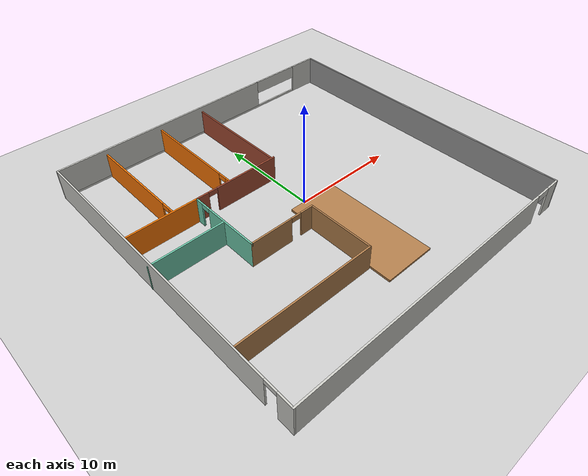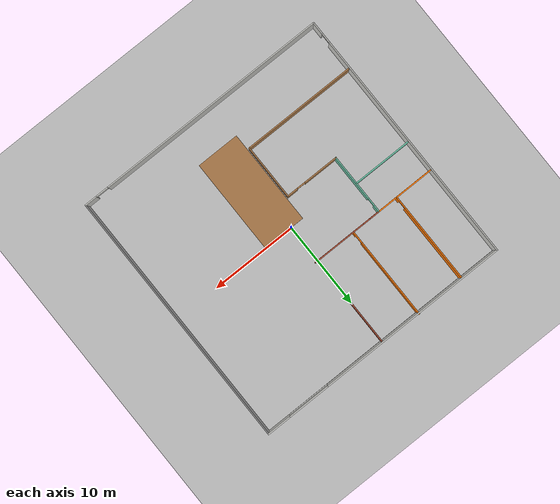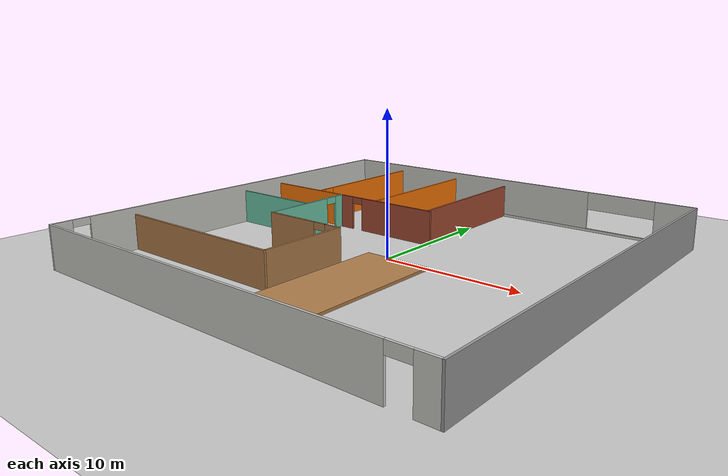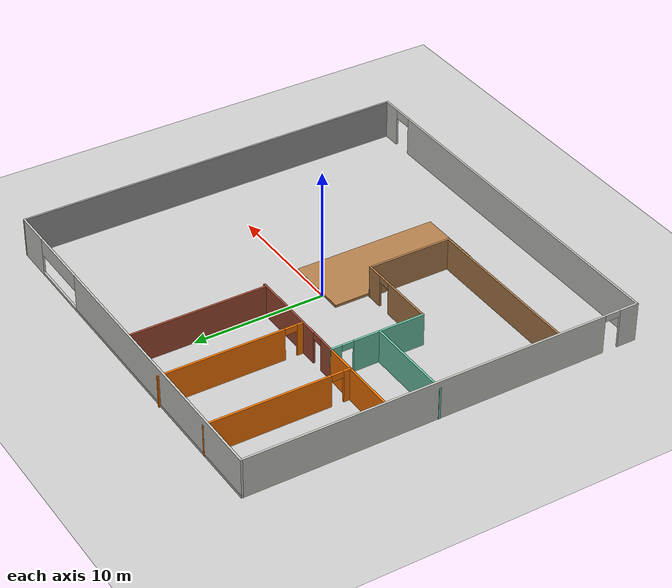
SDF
<sdf version="1.7">
 <world name="default">
  <model name="ground_plane">
   <static>1</static>
   <link name="link">
    <collision name="collision">
     <geometry><plane><normal>0 0 1</normal><size>100 100</size></plane></geometry>
     <surface>
      <contact><collide_bitmask>65535</collide_bitmask></contact>
      <friction><ode><mu>100</mu><mu2>50</mu2></ode></friction>
     </surface>
    </collision>
    <visual name="visual">
     <cast_shadows>0</cast_shadows>
     <geometry><plane><normal>0 0 1</normal><size>100 100</size></plane></geometry>
     <material>
      <script><uri>file://media/materials/scripts/gazebo.material</uri><name>Gazebo/Grey</name></script>
     </material>
    </visual>
   </link>
  </model>
  <model name="7F-2">
   <pose>-0.013384 0.0558 0 0 -0 0</pose>
   <link name="Wall_0">
    <pose>0.013384 -15.0558 0 0 -0 0</pose>
    <visual name="Wall_0_Visual_0">
     <pose>-1.49327 0 1.5 0 -0 0</pose>
     <geometry><box><size>27.1635 0.15 3</size></box></geometry>
     <material>
      <script><uri>file://media/materials/scripts/gazebo.material</uri><name>Gazebo/CeilingTiled</name></script>
      <ambient>1 1 1 1</ambient>
     </material>
     <meta><layer>0</layer></meta>
    </visual>
    <collision name="Wall_0_Collision_0">
     <geometry><box><size>27.1635 0.15 3</size></box></geometry>
     <pose>-1.49327 0 1.5 0 -0 0</pose>
    </collision>
    <visual name="Wall_0_Visual_1">
     <pose>14.3317 0 1.5 0 -0 0</pose>
     <geometry><box><size>1.48654 0.15 3</size></box></geometry>
     <material>
      <script><uri>file://media/materials/scripts/gazebo.material</uri><name>Gazebo/CeilingTiled</name></script>
      <ambient>1 1 1 1</ambient>
     </material>
     <meta><layer>0</layer></meta>
    </visual>
    <collision name="Wall_0_Collision_1">
     <geometry><box><size>1.48654 0.15 3</size></box></geometry>
     <pose>14.3317 0 1.5 0 -0 0</pose>
    </collision>
    <visual name="Wall_0_Visual_2">
     <pose>12.8385 0 2.65 0 -0 0</pose>
     <geometry><box><size>1.5 0.15 0.7</size></box></geometry>
     <material>
      <script><uri>file://media/materials/scripts/gazebo.material</uri><name>Gazebo/CeilingTiled</name></script>
      <ambient>1 1 1 1</ambient>
     </material>
     <meta><layer>0</layer></meta>
    </visual>
    <collision name="Wall_0_Collision_2">
     <geometry><box><size>1.5 0.15 0.7</size></box></geometry>
     <pose>12.8385 0 2.65 0 -0 0</pose>
    </collision>
   </link>
   <link name="Wall_11">
    <pose>-4.68425 9.7558 0 0 -0 -1.5708</pose>
    <visual name="Wall_11_Visual_0">
     <pose>-0.674266 0 1.25 0 -0 0</pose>
     <geometry><box><size>9.40147 0.15 2.5</size></box></geometry>
     <material>
      <script><uri>file://media/materials/scripts/gazebo.material</uri><name>Gazebo/Grey</name></script>
      <ambient>0.996078 0.47451 0.0196078 1</ambient>
     </material>
     <meta><layer>0</layer></meta>
    </visual>
    <collision name="Wall_11_Collision_0">
     <geometry><box><size>9.40147 0.15 2.5</size></box></geometry>
     <pose>-0.674266 0 1.25 0 -0 0</pose>
    </collision>
    <visual name="Wall_11_Visual_1">
     <pose>5.15073 0 1.25 0 -0 0</pose>
     <geometry><box><size>0.448532 0.15 2.5</size></box></geometry>
     <material>
      <script><uri>file://media/materials/scripts/gazebo.material</uri><name>Gazebo/Grey</name></script>
      <ambient>0.996078 0.47451 0.0196078 1</ambient>
     </material>
     <meta><layer>0</layer></meta>
    </visual>
    <collision name="Wall_11_Collision_1">
     <geometry><box><size>0.448532 0.15 2.5</size></box></geometry>
     <pose>5.15073 0 1.25 0 -0 0</pose>
    </collision>
    <visual name="Wall_11_Visual_2">
     <pose>4.47647 0 2.25 0 -0 0</pose>
     <geometry><box><size>0.9 0.15 0.5</size></box></geometry>
     <material>
      <script><uri>file://media/materials/scripts/gazebo.material</uri><name>Gazebo/Grey</name></script>
      <ambient>0.996078 0.47451 0.0196078 1</ambient>
     </material>
     <meta><layer>0</layer></meta>
    </visual>
    <collision name="Wall_11_Collision_2">
     <geometry><box><size>0.9 0.15 0.5</size></box></geometry>
     <pose>4.47647 0 2.25 0 -0 0</pose>
    </collision>
   </link>
   <link name="Wall_13">
    <pose>-10.409 9.6488 0 0 -0 -1.5708</pose>
    <visual name="Wall_13_Visual_0">
     <pose>-0.727769 0 1.25 0 -0 0</pose>
     <geometry><box><size>9.29446 0.15 2.5</size></box></geometry>
     <material>
      <script><uri>file://media/materials/scripts/gazebo.material</uri><name>Gazebo/Grey</name></script>
      <ambient>0.996078 0.47451 0.0196078 1</ambient>
     </material>
     <meta><layer>0</layer></meta>
    </visual>
    <collision name="Wall_13_Collision_0">
     <geometry><box><size>9.29446 0.15 2.5</size></box></geometry>
     <pose>-0.727769 0 1.25 0 -0 0</pose>
    </collision>
    <visual name="Wall_13_Visual_1">
     <pose>5.09723 0 1.25 0 -0 0</pose>
     <geometry><box><size>0.555538 0.15 2.5</size></box></geometry>
     <material>
      <script><uri>file://media/materials/scripts/gazebo.material</uri><name>Gazebo/Grey</name></script>
      <ambient>0.996078 0.47451 0.0196078 1</ambient>
     </material>
     <meta><layer>0</layer></meta>
    </visual>
    <collision name="Wall_13_Collision_1">
     <geometry><box><size>0.555538 0.15 2.5</size></box></geometry>
     <pose>5.09723 0 1.25 0 -0 0</pose>
    </collision>
    <visual name="Wall_13_Visual_2">
     <pose>4.36946 0 2.25 0 -0 0</pose>
     <geometry><box><size>0.9 0.15 0.5</size></box></geometry>
     <material>
      <script><uri>file://media/materials/scripts/gazebo.material</uri><name>Gazebo/Grey</name></script>
      <ambient>0.996078 0.47451 0.0196078 1</ambient>
     </material>
     <meta><layer>0</layer></meta>
    </visual>
    <collision name="Wall_13_Collision_2">
     <geometry><box><size>0.9 0.15 0.5</size></box></geometry>
     <pose>4.36946 0 2.25 0 -0 0</pose>
    </collision>
   </link>
   <link name="Wall_15">
    <pose>-8.07841 0.751801 0 0 -0 -1.5708</pose>
    <visual name="Wall_15_Visual_0">
     <pose>-3.18481 0 1.25 0 -0 0</pose>
     <geometry><box><size>0.880378 0.15 2.5</size></box></geometry>
     <material>
      <script><uri>file://media/materials/scripts/gazebo.material</uri><name>Gazebo/Grey</name></script>
      <ambient>0.435294 0.796078 0.67451 1</ambient>
     </material>
     <meta><layer>0</layer></meta>
    </visual>
    <collision name="Wall_15_Collision_0">
     <geometry><box><size>0.880378 0.15 2.5</size></box></geometry>
     <pose>-3.18481 0 1.25 0 -0 0</pose>
    </collision>
    <visual name="Wall_15_Visual_1">
     <pose>0.890189 0 1.25 0 -0 0</pose>
     <geometry><box><size>5.46962 0.15 2.5</size></box></geometry>
     <material>
      <script><uri>file://media/materials/scripts/gazebo.material</uri><name>Gazebo/Grey</name></script>
      <ambient>0.435294 0.796078 0.67451 1</ambient>
     </material>
     <meta><layer>0</layer></meta>
    </visual>
    <collision name="Wall_15_Collision_1">
     <geometry><box><size>5.46962 0.15 2.5</size></box></geometry>
     <pose>0.890189 0 1.25 0 -0 0</pose>
    </collision>
    <visual name="Wall_15_Visual_2">
     <pose>-2.29462 0 2.25 0 -0 0</pose>
     <geometry><box><size>0.9 0.15 0.5</size></box></geometry>
     <material>
      <script><uri>file://media/materials/scripts/gazebo.material</uri><name>Gazebo/Grey</name></script>
      <ambient>0.435294 0.796078 0.67451 1</ambient>
     </material>
     <meta><layer>0</layer></meta>
    </visual>
    <collision name="Wall_15_Collision_2">
     <geometry><box><size>0.9 0.15 0.5</size></box></geometry>
     <pose>-2.29462 0 2.25 0 -0 0</pose>
    </collision>
   </link>
   <link name="Wall_18">
    <pose>-4.91841 -2.7982 0 0 -0 0</pose>
    <visual name="Wall_18_Visual_0">
     <pose>-1.15754 0 1.25 0 -0 0</pose>
     <geometry><box><size>4.15493 0.15 2.5</size></box></geometry>
     <material>
      <script><uri>file://media/materials/scripts/gazebo.material</uri><name>Gazebo/Wood</name></script>
      <ambient>0.435294 0.796078 0.67451 1</ambient>
     </material>
     <meta><layer>0</layer></meta>
    </visual>
    <collision name="Wall_18_Collision_0">
     <geometry><box><size>4.15493 0.15 2.5</size></box></geometry>
     <pose>-1.15754 0 1.25 0 -0 0</pose>
    </collision>
    <visual name="Wall_18_Visual_1">
     <pose>2.57746 0 1.25 0 -0 0</pose>
     <geometry><box><size>1.31507 0.15 2.5</size></box></geometry>
     <material>
      <script><uri>file://media/materials/scripts/gazebo.material</uri><name>Gazebo/Wood</name></script>
      <ambient>0.435294 0.796078 0.67451 1</ambient>
     </material>
     <meta><layer>0</layer></meta>
    </visual>
    <collision name="Wall_18_Collision_1">
     <geometry><box><size>1.31507 0.15 2.5</size></box></geometry>
     <pose>2.57746 0 1.25 0 -0 0</pose>
    </collision>
    <visual name="Wall_18_Visual_2">
     <pose>1.41993 0 2.25 0 -0 0</pose>
     <geometry><box><size>1 0.15 0.5</size></box></geometry>
     <material>
      <script><uri>file://media/materials/scripts/gazebo.material</uri><name>Gazebo/Wood</name></script>
      <ambient>0.435294 0.796078 0.67451 1</ambient>
     </material>
     <meta><layer>0</layer></meta>
    </visual>
    <collision name="Wall_18_Collision_2">
     <geometry><box><size>1 0.15 0.5</size></box></geometry>
     <pose>1.41993 0 2.25 0 -0 0</pose>
    </collision>
   </link>
   <link name="Wall_19">
    <collision name="Wall_19_Collision">
     <geometry><box><size>6.5 0.15 2.5</size></box></geometry>
     <pose>0 0 1.25 0 -0 0</pose>
    </collision>
    <visual name="Wall_19_Visual">
     <pose>0 0 1.25 0 -0 0</pose>
     <geometry><box><size>6.5 0.15 2.5</size></box></geometry>
     <material>
      <script><uri>file://media/materials/scripts/gazebo.material</uri><name>Gazebo/Wood</name></script>
      <ambient>0.203922 0.396078 0.643137 1</ambient>
     </material>
     <meta><layer>0</layer></meta>
    </visual>
    <pose>-1.75841 -5.9732 0 0 -0 -1.5708</pose>
   </link>
   <link name="Wall_2">
    <collision name="Wall_2_Collision">
     <geometry><box><size>30.15 0.15 3</size></box></geometry>
     <pose>0 0 1.5 0 -0 0</pose>
    </collision>
    <visual name="Wall_2_Visual">
     <pose>0 0 1.5 0 -0 0</pose>
     <geometry><box><size>30.15 0.15 3</size></box></geometry>
     <material>
      <script><uri>file://media/materials/scripts/gazebo.material</uri><name>Gazebo/Grey</name></script>
      <ambient>1 1 1 1</ambient>
     </material>
     <meta><layer>0</layer></meta>
    </visual>
    <pose>15.0134 -0.055802 0 0 -0 1.5708</pose>
   </link>
   <link name="Wall_20">
    <collision name="Wall_20_Collision">
     <geometry><box><size>13.25 0.15 2.5</size></box></geometry>
     <pose>0 0 1.25 0 -0 0</pose>
    </collision>
    <visual name="Wall_20_Visual">
     <pose>0 0 1.25 0 -0 0</pose>
     <geometry><box><size>13.25 0.15 2.5</size></box></geometry>
     <material>
      <script><uri>file://media/materials/scripts/gazebo.material</uri><name>Gazebo/Wood</name></script>
      <ambient>0.203922 0.396078 0.643137 1</ambient>
     </material>
     <meta><layer>0</layer></meta>
    </visual>
    <pose>-8.30841 -9.1482 0 0 -0 3.14159</pose>
   </link>
   <link name="Wall_24">
    <collision name="Wall_24_Collision">
     <geometry><box><size>7.03 0.15 2.5</size></box></geometry>
     <pose>0 0 1.25 0 -0 0</pose>
    </collision>
    <visual name="Wall_24_Visual">
     <pose>0 0 1.25 0 -0 0</pose>
     <geometry><box><size>7.03 0.15 2.5</size></box></geometry>
     <material>
      <script><uri>file://media/materials/scripts/gazebo.material</uri><name>Gazebo/Grey</name></script>
      <ambient>0.996078 0.47451 0.0196078 1</ambient>
     </material>
     <meta><layer>0</layer></meta>
    </visual>
    <pose>-11.5184 4.3018 0 0 -0 3.14159</pose>
   </link>
   <link name="Wall_26">
    <pose>-3.91341 4.3018 0 0 -0 0</pose>
    <visual name="Wall_26_Visual_0">
     <pose>-3.62084 0 1.25 0 -0 0</pose>
     <geometry><box><size>1.25833 0.15 2.5</size></box></geometry>
     <material>
      <script><uri>file://media/materials/scripts/gazebo.material</uri><name>Gazebo/Bricks</name></script>
      <ambient>1 1 1 1</ambient>
     </material>
     <meta><layer>0</layer></meta>
    </visual>
    <collision name="Wall_26_Collision_0">
     <geometry><box><size>1.25833 0.15 2.5</size></box></geometry>
     <pose>-3.62084 0 1.25 0 -0 0</pose>
    </collision>
    <visual name="Wall_26_Visual_1">
     <pose>1.07916 0 1.25 0 -0 0</pose>
     <geometry><box><size>6.34167 0.15 2.5</size></box></geometry>
     <material>
      <script><uri>file://media/materials/scripts/gazebo.material</uri><name>Gazebo/Bricks</name></script>
      <ambient>1 1 1 1</ambient>
     </material>
     <meta><layer>0</layer></meta>
    </visual>
    <collision name="Wall_26_Collision_1">
     <geometry><box><size>6.34167 0.15 2.5</size></box></geometry>
     <pose>1.07916 0 1.25 0 -0 0</pose>
    </collision>
    <visual name="Wall_26_Visual_2">
     <pose>-2.54167 0 2.25 0 -0 0</pose>
     <geometry><box><size>0.9 0.15 0.5</size></box></geometry>
     <material>
      <script><uri>file://media/materials/scripts/gazebo.material</uri><name>Gazebo/Bricks</name></script>
      <ambient>1 1 1 1</ambient>
     </material>
     <meta><layer>0</layer></meta>
    </visual>
    <collision name="Wall_26_Collision_2">
     <geometry><box><size>0.9 0.15 0.5</size></box></geometry>
     <pose>-2.54167 0 2.25 0 -0 0</pose>
    </collision>
   </link>
   <link name="Wall_30">
    <collision name="Wall_30_Collision">
     <geometry><box><size>7 0.15 2.5</size></box></geometry>
     <pose>0 0 1.25 0 -0 0</pose>
    </collision>
    <visual name="Wall_30_Visual">
     <pose>0 0 1.25 0 -0 0</pose>
     <geometry><box><size>7 0.15 2.5</size></box></geometry>
     <material>
      <script><uri>file://media/materials/scripts/gazebo.material</uri><name>Gazebo/Grey</name></script>
      <ambient>0.435294 0.796078 0.67451 1</ambient>
     </material>
     <meta><layer>0</layer></meta>
    </visual>
    <pose>-11.5884 0.576344 0 0 -0 0</pose>
   </link>
   <link name="Wall_35">
    <collision name="Wall_35_Collision">
     <geometry><box><size>11.1 5 0.2</size></box></geometry>
     <pose>0 0 0.1 0 -0 0</pose>
    </collision>
    <visual name="Wall_35_Visual">
     <pose>0 0 0.1 0 -0 0</pose>
     <geometry><box><size>11.1 5 0.2</size></box></geometry>
     <material>
      <script><uri>file://media/materials/scripts/gazebo.material</uri><name>Gazebo/Wood</name></script>
      <ambient>1 1 1 1</ambient>
     </material>
     <meta><layer>0</layer></meta>
    </visual>
    <pose>0.909882 -5.6625 0 0 -0 -1.5708</pose>
   </link>
   <link name="Wall_4">
    <pose>0.013384 14.9442 0 0 -0 3.14159</pose>
    <visual name="Wall_4_Visual_0">
     <pose>-13.6482 0 1.5 0 -0 0</pose>
     <geometry><box><size>2.85357 0.15 3</size></box></geometry>
     <material>
      <script><uri>file://media/materials/scripts/gazebo.material</uri><name>Gazebo/CeilingTiled</name></script>
      <ambient>1 1 1 1</ambient>
     </material>
     <meta><layer>0</layer></meta>
    </visual>
    <collision name="Wall_4_Collision_0">
     <geometry><box><size>2.85357 0.15 3</size></box></geometry>
     <pose>-13.6482 0 1.5 0 -0 0</pose>
    </collision>
    <visual name="Wall_4_Visual_1">
     <pose>1.42679 0 0.1 0 -0 0</pose>
     <geometry><box><size>27.2964 0.15 0.2</size></box></geometry>
     <material>
      <script><uri>file://media/materials/scripts/gazebo.material</uri><name>Gazebo/CeilingTiled</name></script>
      <ambient>1 1 1 1</ambient>
     </material>
     <meta><layer>0</layer></meta>
    </visual>
    <collision name="Wall_4_Collision_1">
     <geometry><box><size>27.2964 0.15 0.2</size></box></geometry>
     <pose>1.42679 0 0.1 0 -0 0</pose>
    </collision>
    <visual name="Wall_4_Visual_2">
     <pose>3.92679 0 1.6 0 -0 0</pose>
     <geometry><box><size>22.2964 0.15 2.8</size></box></geometry>
     <material>
      <script><uri>file://media/materials/scripts/gazebo.material</uri><name>Gazebo/CeilingTiled</name></script>
      <ambient>1 1 1 1</ambient>
     </material>
     <meta><layer>0</layer></meta>
    </visual>
    <collision name="Wall_4_Collision_2">
     <geometry><box><size>22.2964 0.15 2.8</size></box></geometry>
     <pose>3.92679 0 1.6 0 -0 0</pose>
    </collision>
    <visual name="Wall_4_Visual_3">
     <pose>-9.72143 0 2.35 0 -0 0</pose>
     <geometry><box><size>5 0.15 1.3</size></box></geometry>
     <material>
      <script><uri>file://media/materials/scripts/gazebo.material</uri><name>Gazebo/CeilingTiled</name></script>
      <ambient>1 1 1 1</ambient>
     </material>
     <meta><layer>0</layer></meta>
    </visual>
    <collision name="Wall_4_Collision_3">
     <geometry><box><size>5 0.15 1.3</size></box></geometry>
     <pose>-9.72143 0 2.35 0 -0 0</pose>
    </collision>
   </link>
   <link name="Wall_6">
    <pose>-14.9866 -0.055802 0 0 -0 -1.5708</pose>
    <visual name="Wall_6_Visual_0">
     <pose>-1.34384 0 1.5 0 -0 0</pose>
     <geometry><box><size>27.4623 0.15 3</size></box></geometry>
     <material>
      <script><uri>file://media/materials/scripts/gazebo.material</uri><name>Gazebo/CeilingTiled</name></script>
      <ambient>1 1 1 1</ambient>
     </material>
     <meta><layer>0</layer></meta>
    </visual>
    <collision name="Wall_6_Collision_0">
     <geometry><box><size>27.4623 0.15 3</size></box></geometry>
     <pose>-1.34384 0 1.5 0 -0 0</pose>
    </collision>
    <visual name="Wall_6_Visual_1">
     <pose>14.3312 0 1.5 0 -0 0</pose>
     <geometry><box><size>1.48768 0.15 3</size></box></geometry>
     <material>
      <script><uri>file://media/materials/scripts/gazebo.material</uri><name>Gazebo/CeilingTiled</name></script>
      <ambient>1 1 1 1</ambient>
     </material>
     <meta><layer>0</layer></meta>
    </visual>
    <collision name="Wall_6_Collision_1">
     <geometry><box><size>1.48768 0.15 3</size></box></geometry>
     <pose>14.3312 0 1.5 0 -0 0</pose>
    </collision>
    <visual name="Wall_6_Visual_2">
     <pose>12.9873 0 2.75 0 -0 0</pose>
     <geometry><box><size>1.2 0.15 0.5</size></box></geometry>
     <material>
      <script><uri>file://media/materials/scripts/gazebo.material</uri><name>Gazebo/CeilingTiled</name></script>
      <ambient>1 1 1 1</ambient>
     </material>
     <meta><layer>0</layer></meta>
    </visual>
    <collision name="Wall_6_Collision_2">
     <geometry><box><size>1.2 0.15 0.5</size></box></geometry>
     <pose>12.9873 0 2.75 0 -0 0</pose>
    </collision>
   </link>
   <link name="Wall_8">
    <collision name="Wall_8_Collision">
     <geometry><box><size>10.75 0.15 2.5</size></box></geometry>
     <pose>0 0 1.25 0 -0 0</pose>
    </collision>
    <visual name="Wall_8_Visual">
     <pose>0 0 1.25 0 -0 0</pose>
     <geometry><box><size>10.75 0.15 2.5</size></box></geometry>
     <material>
      <script><uri>file://media/materials/scripts/gazebo.material</uri><name>Gazebo/Bricks</name></script>
      <ambient>1 1 1 1</ambient>
     </material>
     <meta><layer>0</layer></meta>
    </visual>
    <pose>0.064743 9.61919 0 0 -0 -1.5708</pose>
   </link>
   <static>1</static>
  </model>
 </world>
</sdf>
